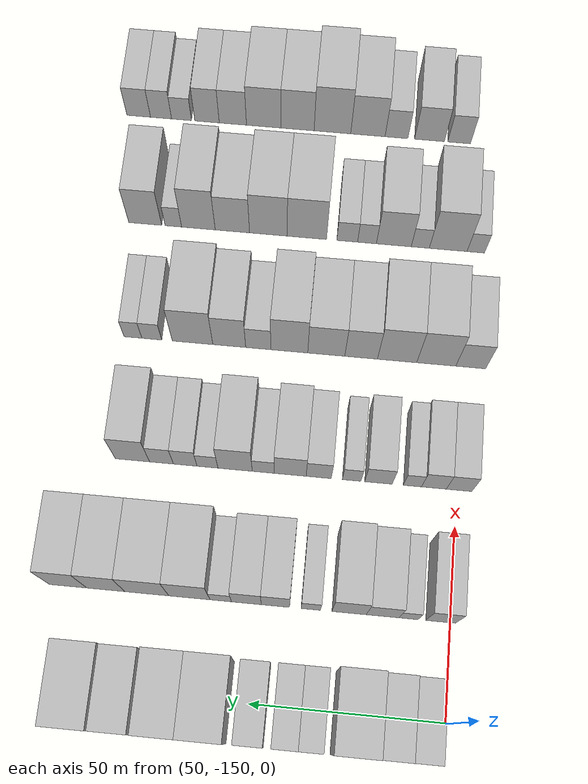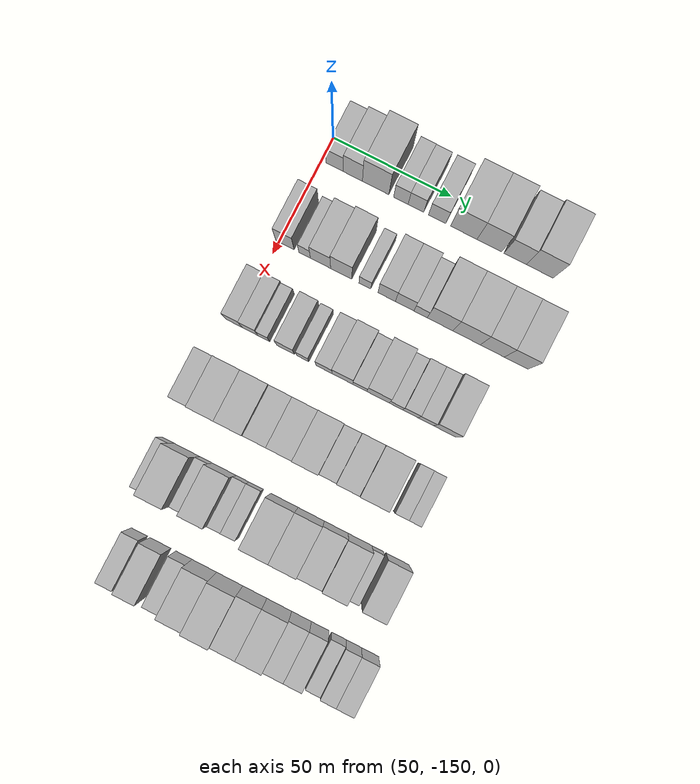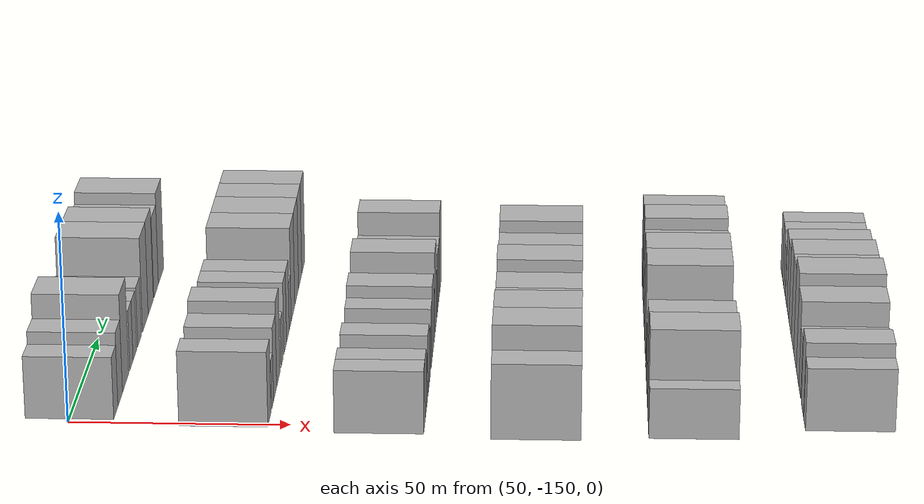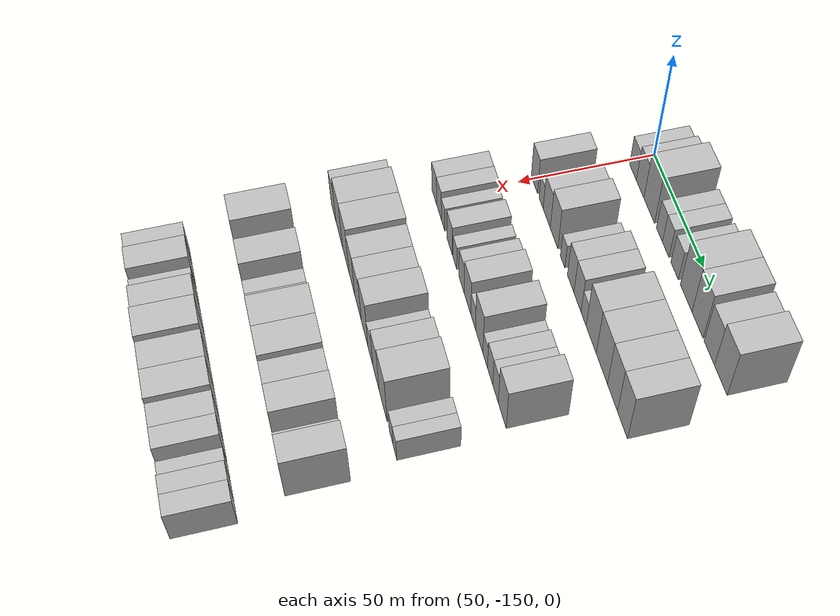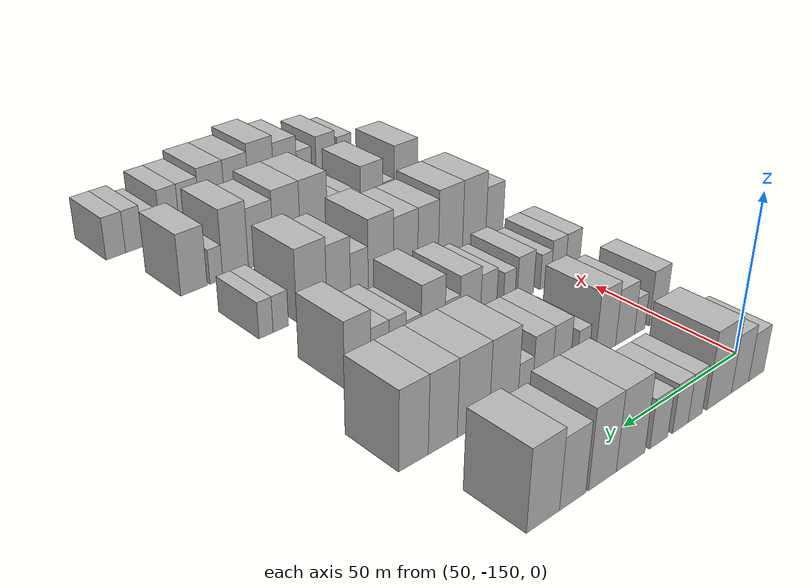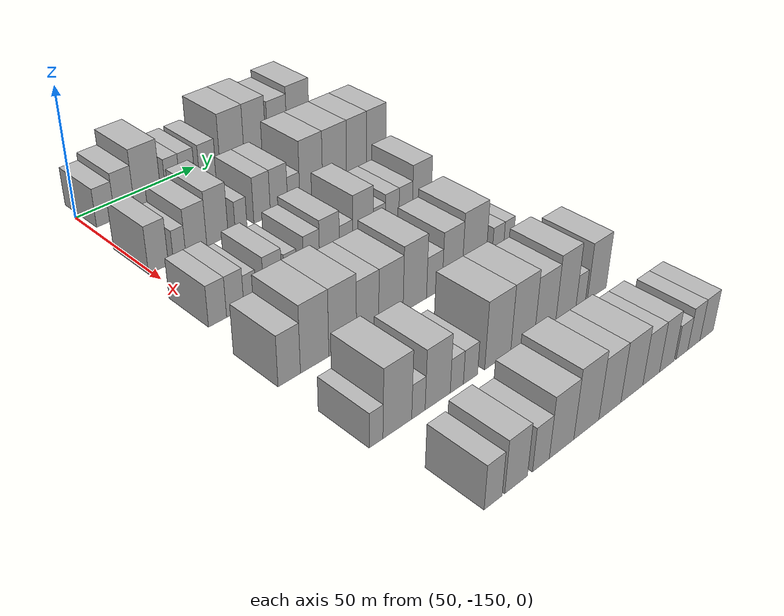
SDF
<sdf version="1.6">
 <world name="default">
  <model name="building_44">
   <static>1</static>
   <pose>50.0000 -144.4932 0 0.000000 0.000000 0.000000</pose>
   <link name="link">
    <pose>0 0 7.50 0 0 0</pose>
    <collision name="collision"><geometry><box><size>20.0000 7.3737 15.0000</size></box></geometry></collision>
    <visual name="visual">
     <cast_shadows>0</cast_shadows>
     <geometry><box><size>20.0000 7.3737 15.0000</size></box></geometry>
     <material>
      <script>
       <uri>model://HANNAS_wall/materials/scripts</uri>
       <uri>model://HANNAS_wall/materials/textures</uri>
       <name>vrc/HANNAS_wall</name>
      </script>
     </material>
    </visual>
   </link>
  </model>
  <model name="building_45">
   <static>1</static>
   <pose>50.0000 -136.7540 0 0.000000 0.000000 0.000000</pose>
   <link name="link">
    <pose>0 0 9.00 0 0 0</pose>
    <collision name="collision"><geometry><box><size>20.0000 8.1047 18.0000</size></box></geometry></collision>
    <visual name="visual">
     <cast_shadows>0</cast_shadows>
     <geometry><box><size>20.0000 8.1047 18.0000</size></box></geometry>
     <material>
      <script>
       <uri>model://HANNAS_wall/materials/scripts</uri>
       <uri>model://HANNAS_wall/materials/textures</uri>
       <name>vrc/HANNAS_wall</name>
      </script>
     </material>
    </visual>
   </link>
  </model>
  <model name="building_46">
   <static>1</static>
   <pose>50.0000 -127.0988 0 0.000000 0.000000 0.000000</pose>
   <link name="link">
    <pose>0 0 12.00 0 0 0</pose>
    <collision name="collision"><geometry><box><size>20.0000 11.2057 24.0000</size></box></geometry></collision>
    <visual name="visual">
     <cast_shadows>0</cast_shadows>
     <geometry><box><size>20.0000 11.2057 24.0000</size></box></geometry>
     <material>
      <script>
       <uri>model://HANNAS_wall/materials/scripts</uri>
       <uri>model://HANNAS_wall/materials/textures</uri>
       <name>vrc/HANNAS_wall</name>
      </script>
     </material>
    </visual>
   </link>
  </model>
  <model name="building_47">
   <static>1</static>
   <pose>50.0000 -116.4129 0 0.000000 0.000000 0.000000</pose>
   <link name="link">
    <pose>0 0 7.50 0 0 0</pose>
    <collision name="collision"><geometry><box><size>20.0000 6.1662 15.0000</size></box></geometry></collision>
    <visual name="visual">
     <cast_shadows>0</cast_shadows>
     <geometry><box><size>20.0000 6.1662 15.0000</size></box></geometry>
     <material>
      <script>
       <uri>model://HANNAS_wall/materials/scripts</uri>
       <uri>model://HANNAS_wall/materials/textures</uri>
       <name>vrc/HANNAS_wall</name>
      </script>
     </material>
    </visual>
   </link>
  </model>
  <model name="building_48">
   <static>1</static>
   <pose>50.0000 -110.0384 0 0.000000 0.000000 0.000000</pose>
   <link name="link">
    <pose>0 0 7.50 0 0 0</pose>
    <collision name="collision"><geometry><box><size>20.0000 6.5830 15.0000</size></box></geometry></collision>
    <visual name="visual">
     <cast_shadows>0</cast_shadows>
     <geometry><box><size>20.0000 6.5830 15.0000</size></box></geometry>
     <material>
      <script>
       <uri>model://HANNAS_wall/materials/scripts</uri>
       <uri>model://HANNAS_wall/materials/textures</uri>
       <name>vrc/HANNAS_wall</name>
      </script>
     </material>
    </visual>
   </link>
  </model>
  <model name="building_49">
   <static>1</static>
   <pose>50.0000 -101.0673 0 0.000000 0.000000 0.000000</pose>
   <link name="link">
    <pose>0 0 7.50 0 0 0</pose>
    <collision name="collision"><geometry><box><size>20.0000 7.3591 15.0000</size></box></geometry></collision>
    <visual name="visual">
     <cast_shadows>0</cast_shadows>
     <geometry><box><size>20.0000 7.3591 15.0000</size></box></geometry>
     <material>
      <script>
       <uri>model://HANNAS_wall/materials/scripts</uri>
       <uri>model://HANNAS_wall/materials/textures</uri>
       <name>vrc/HANNAS_wall</name>
      </script>
     </material>
    </visual>
   </link>
  </model>
  <model name="building_50">
   <static>1</static>
   <pose>50.0000 -89.7854 0 0.000000 0.000000 0.000000</pose>
   <link name="link">
    <pose>0 0 12.00 0 0 0</pose>
    <collision name="collision"><geometry><box><size>20.0000 11.2048 24.0000</size></box></geometry></collision>
    <visual name="visual">
     <cast_shadows>0</cast_shadows>
     <geometry><box><size>20.0000 11.2048 24.0000</size></box></geometry>
     <material>
      <script>
       <uri>model://HANNAS_wall/materials/scripts</uri>
       <uri>model://HANNAS_wall/materials/textures</uri>
       <name>vrc/HANNAS_wall</name>
      </script>
     </material>
    </visual>
   </link>
  </model>
  <model name="building_51">
   <static>1</static>
   <pose>50.0000 -78.9903 0 0.000000 0.000000 0.000000</pose>
   <link name="link">
    <pose>0 0 12.00 0 0 0</pose>
    <collision name="collision"><geometry><box><size>20.0000 10.3854 24.0000</size></box></geometry></collision>
    <visual name="visual">
     <cast_shadows>0</cast_shadows>
     <geometry><box><size>20.0000 10.3854 24.0000</size></box></geometry>
     <material>
      <script>
       <uri>model://HANNAS_wall/materials/scripts</uri>
       <uri>model://HANNAS_wall/materials/textures</uri>
       <name>vrc/HANNAS_wall</name>
      </script>
     </material>
    </visual>
   </link>
  </model>
  <model name="building_52">
   <static>1</static>
   <pose>50.0000 -68.1054 0 0.000000 0.000000 0.000000</pose>
   <link name="link">
    <pose>0 0 10.50 0 0 0</pose>
    <collision name="collision"><geometry><box><size>20.0000 9.3843 21.0000</size></box></geometry></collision>
    <visual name="visual">
     <cast_shadows>0</cast_shadows>
     <geometry><box><size>20.0000 9.3843 21.0000</size></box></geometry>
     <material>
      <script>
       <uri>model://HANNAS_wall/materials/scripts</uri>
       <uri>model://HANNAS_wall/materials/textures</uri>
       <name>vrc/HANNAS_wall</name>
      </script>
     </material>
    </visual>
   </link>
  </model>
  <model name="building_53">
   <static>1</static>
   <pose>50.0000 -57.7702 0 0.000000 0.000000 0.000000</pose>
   <link name="link">
    <pose>0 0 12.00 0 0 0</pose>
    <collision name="collision"><geometry><box><size>20.0000 11.2861 24.0000</size></box></geometry></collision>
    <visual name="visual">
     <cast_shadows>0</cast_shadows>
     <geometry><box><size>20.0000 11.2861 24.0000</size></box></geometry>
     <material>
      <script>
       <uri>model://HANNAS_wall/materials/scripts</uri>
       <uri>model://HANNAS_wall/materials/textures</uri>
       <name>vrc/HANNAS_wall</name>
      </script>
     </material>
    </visual>
   </link>
  </model>
  <model name="building_177">
   <static>1</static>
   <pose>85.0000 -147.4346 0 0.000000 0.000000 0.000000</pose>
   <link name="link">
    <pose>0 0 9.00 0 0 0</pose>
    <collision name="collision"><geometry><box><size>20.0000 7.7125 18.0000</size></box></geometry></collision>
    <visual name="visual">
     <cast_shadows>0</cast_shadows>
     <geometry><box><size>20.0000 7.7125 18.0000</size></box></geometry>
     <material>
      <script>
       <uri>model://HANNAS_wall/materials/scripts</uri>
       <uri>model://HANNAS_wall/materials/textures</uri>
       <name>vrc/HANNAS_wall</name>
      </script>
     </material>
    </visual>
   </link>
  </model>
  <model name="building_178">
   <static>1</static>
   <pose>85.0000 -139.1240 0 0.000000 0.000000 0.000000</pose>
   <link name="link">
    <pose>0 0 6.00 0 0 0</pose>
    <collision name="collision"><geometry><box><size>20.0000 4.9088 12.0000</size></box></geometry></collision>
    <visual name="visual">
     <cast_shadows>0</cast_shadows>
     <geometry><box><size>20.0000 4.9088 12.0000</size></box></geometry>
     <material>
      <script>
       <uri>model://HANNAS_wall/materials/scripts</uri>
       <uri>model://HANNAS_wall/materials/textures</uri>
       <name>vrc/HANNAS_wall</name>
      </script>
     </material>
    </visual>
   </link>
  </model>
  <model name="building_179">
   <static>1</static>
   <pose>85.0000 -132.3957 0 0.000000 0.000000 0.000000</pose>
   <link name="link">
    <pose>0 0 9.00 0 0 0</pose>
    <collision name="collision"><geometry><box><size>20.0000 8.5478 18.0000</size></box></geometry></collision>
    <visual name="visual">
     <cast_shadows>0</cast_shadows>
     <geometry><box><size>20.0000 8.5478 18.0000</size></box></geometry>
     <material>
      <script>
       <uri>model://HANNAS_wall/materials/scripts</uri>
       <uri>model://HANNAS_wall/materials/textures</uri>
       <name>vrc/HANNAS_wall</name>
      </script>
     </material>
    </visual>
   </link>
  </model>
  <model name="building_180">
   <static>1</static>
   <pose>85.0000 -123.6676 0 0.000000 0.000000 0.000000</pose>
   <link name="link">
    <pose>0 0 10.50 0 0 0</pose>
    <collision name="collision"><geometry><box><size>20.0000 8.9084 21.0000</size></box></geometry></collision>
    <visual name="visual">
     <cast_shadows>0</cast_shadows>
     <geometry><box><size>20.0000 8.9084 21.0000</size></box></geometry>
     <material>
      <script>
       <uri>model://HANNAS_wall/materials/scripts</uri>
       <uri>model://HANNAS_wall/materials/textures</uri>
       <name>vrc/HANNAS_wall</name>
      </script>
     </material>
    </visual>
   </link>
  </model>
  <model name="building_181">
   <static>1</static>
   <pose>85.0000 -113.6904 0 0.000000 0.000000 0.000000</pose>
   <link name="link">
    <pose>0 0 6.00 0 0 0</pose>
    <collision name="collision"><geometry><box><size>20.0000 5.0460 12.0000</size></box></geometry></collision>
    <visual name="visual">
     <cast_shadows>0</cast_shadows>
     <geometry><box><size>20.0000 5.0460 12.0000</size></box></geometry>
     <material>
      <script>
       <uri>model://HANNAS_wall/materials/scripts</uri>
       <uri>model://HANNAS_wall/materials/textures</uri>
       <name>vrc/HANNAS_wall</name>
      </script>
     </material>
    </visual>
   </link>
  </model>
  <model name="building_182">
   <static>1</static>
   <pose>85.0000 -104.4990 0 0.000000 0.000000 0.000000</pose>
   <link name="link">
    <pose>0 0 9.00 0 0 0</pose>
    <collision name="collision"><geometry><box><size>20.0000 7.3367 18.0000</size></box></geometry></collision>
    <visual name="visual">
     <cast_shadows>0</cast_shadows>
     <geometry><box><size>20.0000 7.3367 18.0000</size></box></geometry>
     <material>
      <script>
       <uri>model://HANNAS_wall/materials/scripts</uri>
       <uri>model://HANNAS_wall/materials/textures</uri>
       <name>vrc/HANNAS_wall</name>
      </script>
     </material>
    </visual>
   </link>
  </model>
  <model name="building_183">
   <static>1</static>
   <pose>85.0000 -96.9382 0 0.000000 0.000000 0.000000</pose>
   <link name="link">
    <pose>0 0 9.00 0 0 0</pose>
    <collision name="collision"><geometry><box><size>20.0000 7.7849 18.0000</size></box></geometry></collision>
    <visual name="visual">
     <cast_shadows>0</cast_shadows>
     <geometry><box><size>20.0000 7.7849 18.0000</size></box></geometry>
     <material>
      <script>
       <uri>model://HANNAS_wall/materials/scripts</uri>
       <uri>model://HANNAS_wall/materials/textures</uri>
       <name>vrc/HANNAS_wall</name>
      </script>
     </material>
    </visual>
   </link>
  </model>
  <model name="building_184">
   <static>1</static>
   <pose>85.0000 -90.2347 0 0.000000 0.000000 0.000000</pose>
   <link name="link">
    <pose>0 0 6.00 0 0 0</pose>
    <collision name="collision"><geometry><box><size>20.0000 5.6222 12.0000</size></box></geometry></collision>
    <visual name="visual">
     <cast_shadows>0</cast_shadows>
     <geometry><box><size>20.0000 5.6222 12.0000</size></box></geometry>
     <material>
      <script>
       <uri>model://HANNAS_wall/materials/scripts</uri>
       <uri>model://HANNAS_wall/materials/textures</uri>
       <name>vrc/HANNAS_wall</name>
      </script>
     </material>
    </visual>
   </link>
  </model>
  <model name="building_185">
   <static>1</static>
   <pose>85.0000 -82.0452 0 0.000000 0.000000 0.000000</pose>
   <link name="link">
    <pose>0 0 12.00 0 0 0</pose>
    <collision name="collision"><geometry><box><size>20.0000 10.7568 24.0000</size></box></geometry></collision>
    <visual name="visual">
     <cast_shadows>0</cast_shadows>
     <geometry><box><size>20.0000 10.7568 24.0000</size></box></geometry>
     <material>
      <script>
       <uri>model://HANNAS_wall/materials/scripts</uri>
       <uri>model://HANNAS_wall/materials/textures</uri>
       <name>vrc/HANNAS_wall</name>
      </script>
     </material>
    </visual>
   </link>
  </model>
  <model name="building_186">
   <static>1</static>
   <pose>85.0000 -70.8764 0 0.000000 0.000000 0.000000</pose>
   <link name="link">
    <pose>0 0 12.00 0 0 0</pose>
    <collision name="collision"><geometry><box><size>20.0000 11.5807 24.0000</size></box></geometry></collision>
    <visual name="visual">
     <cast_shadows>0</cast_shadows>
     <geometry><box><size>20.0000 11.5807 24.0000</size></box></geometry>
     <material>
      <script>
       <uri>model://HANNAS_wall/materials/scripts</uri>
       <uri>model://HANNAS_wall/materials/textures</uri>
       <name>vrc/HANNAS_wall</name>
      </script>
     </material>
    </visual>
   </link>
  </model>
  <model name="building_187">
   <static>1</static>
   <pose>85.0000 -60.0689 0 0.000000 0.000000 0.000000</pose>
   <link name="link">
    <pose>0 0 12.00 0 0 0</pose>
    <collision name="collision"><geometry><box><size>20.0000 10.0343 24.0000</size></box></geometry></collision>
    <visual name="visual">
     <cast_shadows>0</cast_shadows>
     <geometry><box><size>20.0000 10.0343 24.0000</size></box></geometry>
     <material>
      <script>
       <uri>model://HANNAS_wall/materials/scripts</uri>
       <uri>model://HANNAS_wall/materials/textures</uri>
       <name>vrc/HANNAS_wall</name>
      </script>
     </material>
    </visual>
   </link>
  </model>
  <model name="building_188">
   <static>1</static>
   <pose>85.0000 -50.1164 0 0.000000 0.000000 0.000000</pose>
   <link name="link">
    <pose>0 0 12.00 0 0 0</pose>
    <collision name="collision"><geometry><box><size>20.0000 9.8706 24.0000</size></box></geometry></collision>
    <visual name="visual">
     <cast_shadows>0</cast_shadows>
     <geometry><box><size>20.0000 9.8706 24.0000</size></box></geometry>
     <material>
      <script>
       <uri>model://HANNAS_wall/materials/scripts</uri>
       <uri>model://HANNAS_wall/materials/textures</uri>
       <name>vrc/HANNAS_wall</name>
      </script>
     </material>
    </visual>
   </link>
  </model>
  <model name="building_302">
   <static>1</static>
   <pose>120.0000 -150.6506 0 0.000000 0.000000 0.000000</pose>
   <link name="link">
    <pose>0 0 7.50 0 0 0</pose>
    <collision name="collision"><geometry><box><size>20.0000 6.8512 15.0000</size></box></geometry></collision>
    <visual name="visual">
     <cast_shadows>0</cast_shadows>
     <geometry><box><size>20.0000 6.8512 15.0000</size></box></geometry>
     <material>
      <script>
       <uri>model://HANNAS_wall/materials/scripts</uri>
       <uri>model://HANNAS_wall/materials/textures</uri>
       <name>vrc/HANNAS_wall</name>
      </script>
     </material>
    </visual>
   </link>
  </model>
  <model name="building_303">
   <static>1</static>
   <pose>120.0000 -143.8847 0 0.000000 0.000000 0.000000</pose>
   <link name="link">
    <pose>0 0 7.50 0 0 0</pose>
    <collision name="collision"><geometry><box><size>20.0000 6.6807 15.0000</size></box></geometry></collision>
    <visual name="visual">
     <cast_shadows>0</cast_shadows>
     <geometry><box><size>20.0000 6.6807 15.0000</size></box></geometry>
     <material>
      <script>
       <uri>model://HANNAS_wall/materials/scripts</uri>
       <uri>model://HANNAS_wall/materials/textures</uri>
       <name>vrc/HANNAS_wall</name>
      </script>
     </material>
    </visual>
   </link>
  </model>
  <model name="building_304">
   <static>1</static>
   <pose>120.0000 -138.1042 0 0.000000 0.000000 0.000000</pose>
   <link name="link">
    <pose>0 0 6.00 0 0 0</pose>
    <collision name="collision"><geometry><box><size>20.0000 4.8803 12.0000</size></box></geometry></collision>
    <visual name="visual">
     <cast_shadows>0</cast_shadows>
     <geometry><box><size>20.0000 4.8803 12.0000</size></box></geometry>
     <material>
      <script>
       <uri>model://HANNAS_wall/materials/scripts</uri>
       <uri>model://HANNAS_wall/materials/textures</uri>
       <name>vrc/HANNAS_wall</name>
      </script>
     </material>
    </visual>
   </link>
  </model>
  <model name="building_305">
   <static>1</static>
   <pose>120.0000 -128.9556 0 0.000000 0.000000 0.000000</pose>
   <link name="link">
    <pose>0 0 7.50 0 0 0</pose>
    <collision name="collision"><geometry><box><size>20.0000 7.4170 15.0000</size></box></geometry></collision>
    <visual name="visual">
     <cast_shadows>0</cast_shadows>
     <geometry><box><size>20.0000 7.4170 15.0000</size></box></geometry>
     <material>
      <script>
       <uri>model://HANNAS_wall/materials/scripts</uri>
       <uri>model://HANNAS_wall/materials/textures</uri>
       <name>vrc/HANNAS_wall</name>
      </script>
     </material>
    </visual>
   </link>
  </model>
  <model name="building_306">
   <static>1</static>
   <pose>120.0000 -121.7384 0 0.000000 0.000000 0.000000</pose>
   <link name="link">
    <pose>0 0 6.00 0 0 0</pose>
    <collision name="collision"><geometry><box><size>20.0000 5.0174 12.0000</size></box></geometry></collision>
    <visual name="visual">
     <cast_shadows>0</cast_shadows>
     <geometry><box><size>20.0000 5.0174 12.0000</size></box></geometry>
     <material>
      <script>
       <uri>model://HANNAS_wall/materials/scripts</uri>
       <uri>model://HANNAS_wall/materials/textures</uri>
       <name>vrc/HANNAS_wall</name>
      </script>
     </material>
    </visual>
   </link>
  </model>
  <model name="building_307">
   <static>1</static>
   <pose>120.0000 -112.8404 0 0.000000 0.000000 0.000000</pose>
   <link name="link">
    <pose>0 0 7.50 0 0 0</pose>
    <collision name="collision"><geometry><box><size>20.0000 6.7786 15.0000</size></box></geometry></collision>
    <visual name="visual">
     <cast_shadows>0</cast_shadows>
     <geometry><box><size>20.0000 6.7786 15.0000</size></box></geometry>
     <material>
      <script>
       <uri>model://HANNAS_wall/materials/scripts</uri>
       <uri>model://HANNAS_wall/materials/textures</uri>
       <name>vrc/HANNAS_wall</name>
      </script>
     </material>
    </visual>
   </link>
  </model>
  <model name="building_308">
   <static>1</static>
   <pose>120.0000 -105.1440 0 0.000000 0.000000 0.000000</pose>
   <link name="link">
    <pose>0 0 9.00 0 0 0</pose>
    <collision name="collision"><geometry><box><size>20.0000 8.6141 18.0000</size></box></geometry></collision>
    <visual name="visual">
     <cast_shadows>0</cast_shadows>
     <geometry><box><size>20.0000 8.6141 18.0000</size></box></geometry>
     <material>
      <script>
       <uri>model://HANNAS_wall/materials/scripts</uri>
       <uri>model://HANNAS_wall/materials/textures</uri>
       <name>vrc/HANNAS_wall</name>
      </script>
     </material>
    </visual>
   </link>
  </model>
  <model name="building_309">
   <static>1</static>
   <pose>120.0000 -97.8577 0 0.000000 0.000000 0.000000</pose>
   <link name="link">
    <pose>0 0 6.00 0 0 0</pose>
    <collision name="collision"><geometry><box><size>20.0000 5.9584 12.0000</size></box></geometry></collision>
    <visual name="visual">
     <cast_shadows>0</cast_shadows>
     <geometry><box><size>20.0000 5.9584 12.0000</size></box></geometry>
     <material>
      <script>
       <uri>model://HANNAS_wall/materials/scripts</uri>
       <uri>model://HANNAS_wall/materials/textures</uri>
       <name>vrc/HANNAS_wall</name>
      </script>
     </material>
    </visual>
   </link>
  </model>
  <model name="building_310">
   <static>1</static>
   <pose>120.0000 -90.2235 0 0.000000 0.000000 0.000000</pose>
   <link name="link">
    <pose>0 0 10.50 0 0 0</pose>
    <collision name="collision"><geometry><box><size>20.0000 9.3101 21.0000</size></box></geometry></collision>
    <visual name="visual">
     <cast_shadows>0</cast_shadows>
     <geometry><box><size>20.0000 9.3101 21.0000</size></box></geometry>
     <material>
      <script>
       <uri>model://HANNAS_wall/materials/scripts</uri>
       <uri>model://HANNAS_wall/materials/textures</uri>
       <name>vrc/HANNAS_wall</name>
      </script>
     </material>
    </visual>
   </link>
  </model>
  <model name="building_311">
   <static>1</static>
   <pose>120.0000 -82.7351 0 0.000000 0.000000 0.000000</pose>
   <link name="link">
    <pose>0 0 6.00 0 0 0</pose>
    <collision name="collision"><geometry><box><size>20.0000 5.6667 12.0000</size></box></geometry></collision>
    <visual name="visual">
     <cast_shadows>0</cast_shadows>
     <geometry><box><size>20.0000 5.6667 12.0000</size></box></geometry>
     <material>
      <script>
       <uri>model://HANNAS_wall/materials/scripts</uri>
       <uri>model://HANNAS_wall/materials/textures</uri>
       <name>vrc/HANNAS_wall</name>
      </script>
     </material>
    </visual>
   </link>
  </model>
  <model name="building_312">
   <static>1</static>
   <pose>120.0000 -76.6912 0 0.000000 0.000000 0.000000</pose>
   <link name="link">
    <pose>0 0 7.50 0 0 0</pose>
    <collision name="collision"><geometry><box><size>20.0000 6.4211 15.0000</size></box></geometry></collision>
    <visual name="visual">
     <cast_shadows>0</cast_shadows>
     <geometry><box><size>20.0000 6.4211 15.0000</size></box></geometry>
     <material>
      <script>
       <uri>model://HANNAS_wall/materials/scripts</uri>
       <uri>model://HANNAS_wall/materials/textures</uri>
       <name>vrc/HANNAS_wall</name>
      </script>
     </material>
    </visual>
   </link>
  </model>
  <model name="building_313">
   <static>1</static>
   <pose>120.0000 -70.2396 0 0.000000 0.000000 0.000000</pose>
   <link name="link">
    <pose>0 0 7.50 0 0 0</pose>
    <collision name="collision"><geometry><box><size>20.0000 6.4821 15.0000</size></box></geometry></collision>
    <visual name="visual">
     <cast_shadows>0</cast_shadows>
     <geometry><box><size>20.0000 6.4821 15.0000</size></box></geometry>
     <material>
      <script>
       <uri>model://HANNAS_wall/materials/scripts</uri>
       <uri>model://HANNAS_wall/materials/textures</uri>
       <name>vrc/HANNAS_wall</name>
      </script>
     </material>
    </visual>
   </link>
  </model>
  <model name="building_314">
   <static>1</static>
   <pose>120.0000 -62.3307 0 0.000000 0.000000 0.000000</pose>
   <link name="link">
    <pose>0 0 10.50 0 0 0</pose>
    <collision name="collision"><geometry><box><size>20.0000 9.3358 21.0000</size></box></geometry></collision>
    <visual name="visual">
     <cast_shadows>0</cast_shadows>
     <geometry><box><size>20.0000 9.3358 21.0000</size></box></geometry>
     <material>
      <script>
       <uri>model://HANNAS_wall/materials/scripts</uri>
       <uri>model://HANNAS_wall/materials/textures</uri>
       <name>vrc/HANNAS_wall</name>
      </script>
     </material>
    </visual>
   </link>
  </model>
  <model name="building_429">
   <static>1</static>
   <pose>155.0000 -152.3102 0 0.000000 0.000000 0.000000</pose>
   <link name="link">
    <pose>0 0 9.00 0 0 0</pose>
    <collision name="collision"><geometry><box><size>20.0000 8.3105 18.0000</size></box></geometry></collision>
    <visual name="visual">
     <cast_shadows>0</cast_shadows>
     <geometry><box><size>20.0000 8.3105 18.0000</size></box></geometry>
     <material>
      <script>
       <uri>model://HANNAS_wall/materials/scripts</uri>
       <uri>model://HANNAS_wall/materials/textures</uri>
       <name>vrc/HANNAS_wall</name>
      </script>
     </material>
    </visual>
   </link>
  </model>
  <model name="building_430">
   <static>1</static>
   <pose>155.0000 -142.7226 0 0.000000 0.000000 0.000000</pose>
   <link name="link">
    <pose>0 0 12.00 0 0 0</pose>
    <collision name="collision"><geometry><box><size>20.0000 10.8646 24.0000</size></box></geometry></collision>
    <visual name="visual">
     <cast_shadows>0</cast_shadows>
     <geometry><box><size>20.0000 10.8646 24.0000</size></box></geometry>
     <material>
      <script>
       <uri>model://HANNAS_wall/materials/scripts</uri>
       <uri>model://HANNAS_wall/materials/textures</uri>
       <name>vrc/HANNAS_wall</name>
      </script>
     </material>
    </visual>
   </link>
  </model>
  <model name="building_431">
   <static>1</static>
   <pose>155.0000 -131.8116 0 0.000000 0.000000 0.000000</pose>
   <link name="link">
    <pose>0 0 12.00 0 0 0</pose>
    <collision name="collision"><geometry><box><size>20.0000 10.9573 24.0000</size></box></geometry></collision>
    <visual name="visual">
     <cast_shadows>0</cast_shadows>
     <geometry><box><size>20.0000 10.9573 24.0000</size></box></geometry>
     <material>
      <script>
       <uri>model://HANNAS_wall/materials/scripts</uri>
       <uri>model://HANNAS_wall/materials/textures</uri>
       <name>vrc/HANNAS_wall</name>
      </script>
     </material>
    </visual>
   </link>
  </model>
  <model name="building_432">
   <static>1</static>
   <pose>155.0000 -121.7716 0 0.000000 0.000000 0.000000</pose>
   <link name="link">
    <pose>0 0 10.50 0 0 0</pose>
    <collision name="collision"><geometry><box><size>20.0000 9.1228 21.0000</size></box></geometry></collision>
    <visual name="visual">
     <cast_shadows>0</cast_shadows>
     <geometry><box><size>20.0000 9.1228 21.0000</size></box></geometry>
     <material>
      <script>
       <uri>model://HANNAS_wall/materials/scripts</uri>
       <uri>model://HANNAS_wall/materials/textures</uri>
       <name>vrc/HANNAS_wall</name>
      </script>
     </material>
    </visual>
   </link>
  </model>
  <model name="building_433">
   <static>1</static>
   <pose>155.0000 -112.0318 0 0.000000 0.000000 0.000000</pose>
   <link name="link">
    <pose>0 0 10.50 0 0 0</pose>
    <collision name="collision"><geometry><box><size>20.0000 10.3567 21.0000</size></box></geometry></collision>
    <visual name="visual">
     <cast_shadows>0</cast_shadows>
     <geometry><box><size>20.0000 10.3567 21.0000</size></box></geometry>
     <material>
      <script>
       <uri>model://HANNAS_wall/materials/scripts</uri>
       <uri>model://HANNAS_wall/materials/textures</uri>
       <name>vrc/HANNAS_wall</name>
      </script>
     </material>
    </visual>
   </link>
  </model>
  <model name="building_434">
   <static>1</static>
   <pose>155.0000 -101.6927 0 0.000000 0.000000 0.000000</pose>
   <link name="link">
    <pose>0 0 12.00 0 0 0</pose>
    <collision name="collision"><geometry><box><size>20.0000 10.3215 24.0000</size></box></geometry></collision>
    <visual name="visual">
     <cast_shadows>0</cast_shadows>
     <geometry><box><size>20.0000 10.3215 24.0000</size></box></geometry>
     <material>
      <script>
       <uri>model://HANNAS_wall/materials/scripts</uri>
       <uri>model://HANNAS_wall/materials/textures</uri>
       <name>vrc/HANNAS_wall</name>
      </script>
     </material>
    </visual>
   </link>
  </model>
  <model name="building_435">
   <static>1</static>
   <pose>155.0000 -93.0029 0 0.000000 0.000000 0.000000</pose>
   <link name="link">
    <pose>0 0 7.50 0 0 0</pose>
    <collision name="collision"><geometry><box><size>20.0000 7.0582 15.0000</size></box></geometry></collision>
    <visual name="visual">
     <cast_shadows>0</cast_shadows>
     <geometry><box><size>20.0000 7.0582 15.0000</size></box></geometry>
     <material>
      <script>
       <uri>model://HANNAS_wall/materials/scripts</uri>
       <uri>model://HANNAS_wall/materials/textures</uri>
       <name>vrc/HANNAS_wall</name>
      </script>
     </material>
    </visual>
   </link>
  </model>
  <model name="building_436">
   <static>1</static>
   <pose>155.0000 -84.8559 0 0.000000 0.000000 0.000000</pose>
   <link name="link">
    <pose>0 0 10.50 0 0 0</pose>
    <collision name="collision"><geometry><box><size>20.0000 9.2358 21.0000</size></box></geometry></collision>
    <visual name="visual">
     <cast_shadows>0</cast_shadows>
     <geometry><box><size>20.0000 9.2358 21.0000</size></box></geometry>
     <material>
      <script>
       <uri>model://HANNAS_wall/materials/scripts</uri>
       <uri>model://HANNAS_wall/materials/textures</uri>
       <name>vrc/HANNAS_wall</name>
      </script>
     </material>
    </visual>
   </link>
  </model>
  <model name="building_437">
   <static>1</static>
   <pose>155.0000 -74.5309 0 0.000000 0.000000 0.000000</pose>
   <link name="link">
    <pose>0 0 12.00 0 0 0</pose>
    <collision name="collision"><geometry><box><size>20.0000 11.4142 24.0000</size></box></geometry></collision>
    <visual name="visual">
     <cast_shadows>0</cast_shadows>
     <geometry><box><size>20.0000 11.4142 24.0000</size></box></geometry>
     <material>
      <script>
       <uri>model://HANNAS_wall/materials/scripts</uri>
       <uri>model://HANNAS_wall/materials/textures</uri>
       <name>vrc/HANNAS_wall</name>
      </script>
     </material>
    </visual>
   </link>
  </model>
  <model name="building_438">
   <static>1</static>
   <pose>155.0000 -63.0282 0 0.000000 0.000000 0.000000</pose>
   <link name="link">
    <pose>0 0 6.00 0 0 0</pose>
    <collision name="collision"><geometry><box><size>20.0000 5.5913 12.0000</size></box></geometry></collision>
    <visual name="visual">
     <cast_shadows>0</cast_shadows>
     <geometry><box><size>20.0000 5.5913 12.0000</size></box></geometry>
     <material>
      <script>
       <uri>model://HANNAS_wall/materials/scripts</uri>
       <uri>model://HANNAS_wall/materials/textures</uri>
       <name>vrc/HANNAS_wall</name>
      </script>
     </material>
    </visual>
   </link>
  </model>
  <model name="building_439">
   <static>1</static>
   <pose>155.0000 -57.7236 0 0.000000 0.000000 0.000000</pose>
   <link name="link">
    <pose>0 0 6.00 0 0 0</pose>
    <collision name="collision"><geometry><box><size>20.0000 5.0177 12.0000</size></box></geometry></collision>
    <visual name="visual">
     <cast_shadows>0</cast_shadows>
     <geometry><box><size>20.0000 5.0177 12.0000</size></box></geometry>
     <material>
      <script>
       <uri>model://HANNAS_wall/materials/scripts</uri>
       <uri>model://HANNAS_wall/materials/textures</uri>
       <name>vrc/HANNAS_wall</name>
      </script>
     </material>
    </visual>
   </link>
  </model>
  <model name="building_558">
   <static>1</static>
   <pose>190.0000 -152.3273 0 0.000000 0.000000 0.000000</pose>
   <link name="link">
    <pose>0 0 6.00 0 0 0</pose>
    <collision name="collision"><geometry><box><size>20.0000 5.0221 12.0000</size></box></geometry></collision>
    <visual name="visual">
     <cast_shadows>0</cast_shadows>
     <geometry><box><size>20.0000 5.0221 12.0000</size></box></geometry>
     <material>
      <script>
       <uri>model://HANNAS_wall/materials/scripts</uri>
       <uri>model://HANNAS_wall/materials/textures</uri>
       <name>vrc/HANNAS_wall</name>
      </script>
     </material>
    </visual>
   </link>
  </model>
  <model name="building_559">
   <static>1</static>
   <pose>190.0000 -144.3836 0 0.000000 0.000000 0.000000</pose>
   <link name="link">
    <pose>0 0 12.00 0 0 0</pose>
    <collision name="collision"><geometry><box><size>20.0000 10.8654 24.0000</size></box></geometry></collision>
    <visual name="visual">
     <cast_shadows>0</cast_shadows>
     <geometry><box><size>20.0000 10.8654 24.0000</size></box></geometry>
     <material>
      <script>
       <uri>model://HANNAS_wall/materials/scripts</uri>
       <uri>model://HANNAS_wall/materials/textures</uri>
       <name>vrc/HANNAS_wall</name>
      </script>
     </material>
    </visual>
   </link>
  </model>
  <model name="building_560">
   <static>1</static>
   <pose>190.0000 -136.3457 0 0.000000 0.000000 0.000000</pose>
   <link name="link">
    <pose>0 0 6.00 0 0 0</pose>
    <collision name="collision"><geometry><box><size>20.0000 5.2103 12.0000</size></box></geometry></collision>
    <visual name="visual">
     <cast_shadows>0</cast_shadows>
     <geometry><box><size>20.0000 5.2103 12.0000</size></box></geometry>
     <material>
      <script>
       <uri>model://HANNAS_wall/materials/scripts</uri>
       <uri>model://HANNAS_wall/materials/textures</uri>
       <name>vrc/HANNAS_wall</name>
      </script>
     </material>
    </visual>
   </link>
  </model>
  <model name="building_561">
   <static>1</static>
   <pose>190.0000 -128.7146 0 0.000000 0.000000 0.000000</pose>
   <link name="link">
    <pose>0 0 10.50 0 0 0</pose>
    <collision name="collision"><geometry><box><size>20.0000 10.0519 21.0000</size></box></geometry></collision>
    <visual name="visual">
     <cast_shadows>0</cast_shadows>
     <geometry><box><size>20.0000 10.0519 21.0000</size></box></geometry>
     <material>
      <script>
       <uri>model://HANNAS_wall/materials/scripts</uri>
       <uri>model://HANNAS_wall/materials/textures</uri>
       <name>vrc/HANNAS_wall</name>
      </script>
     </material>
    </visual>
   </link>
  </model>
  <model name="building_562">
   <static>1</static>
   <pose>190.0000 -120.9734 0 0.000000 0.000000 0.000000</pose>
   <link name="link">
    <pose>0 0 6.00 0 0 0</pose>
    <collision name="collision"><geometry><box><size>20.0000 5.4306 12.0000</size></box></geometry></collision>
    <visual name="visual">
     <cast_shadows>0</cast_shadows>
     <geometry><box><size>20.0000 5.4306 12.0000</size></box></geometry>
     <material>
      <script>
       <uri>model://HANNAS_wall/materials/scripts</uri>
       <uri>model://HANNAS_wall/materials/textures</uri>
       <name>vrc/HANNAS_wall</name>
      </script>
     </material>
    </visual>
   </link>
  </model>
  <model name="building_563">
   <static>1</static>
   <pose>190.0000 -115.2587 0 0.000000 0.000000 0.000000</pose>
   <link name="link">
    <pose>0 0 6.00 0 0 0</pose>
    <collision name="collision"><geometry><box><size>20.0000 5.9988 12.0000</size></box></geometry></collision>
    <visual name="visual">
     <cast_shadows>0</cast_shadows>
     <geometry><box><size>20.0000 5.9988 12.0000</size></box></geometry>
     <material>
      <script>
       <uri>model://HANNAS_wall/materials/scripts</uri>
       <uri>model://HANNAS_wall/materials/textures</uri>
       <name>vrc/HANNAS_wall</name>
      </script>
     </material>
    </visual>
   </link>
  </model>
  <model name="building_564">
   <static>1</static>
   <pose>190.0000 -103.5517 0 0.000000 0.000000 0.000000</pose>
   <link name="link">
    <pose>0 0 12.00 0 0 0</pose>
    <collision name="collision"><geometry><box><size>20.0000 11.4153 24.0000</size></box></geometry></collision>
    <visual name="visual">
     <cast_shadows>0</cast_shadows>
     <geometry><box><size>20.0000 11.4153 24.0000</size></box></geometry>
     <material>
      <script>
       <uri>model://HANNAS_wall/materials/scripts</uri>
       <uri>model://HANNAS_wall/materials/textures</uri>
       <name>vrc/HANNAS_wall</name>
      </script>
     </material>
    </visual>
   </link>
  </model>
  <model name="building_565">
   <static>1</static>
   <pose>190.0000 -92.3986 0 0.000000 0.000000 0.000000</pose>
   <link name="link">
    <pose>0 0 12.00 0 0 0</pose>
    <collision name="collision"><geometry><box><size>20.0000 10.8908 24.0000</size></box></geometry></collision>
    <visual name="visual">
     <cast_shadows>0</cast_shadows>
     <geometry><box><size>20.0000 10.8908 24.0000</size></box></geometry>
     <material>
      <script>
       <uri>model://HANNAS_wall/materials/scripts</uri>
       <uri>model://HANNAS_wall/materials/textures</uri>
       <name>vrc/HANNAS_wall</name>
      </script>
     </material>
    </visual>
   </link>
  </model>
  <model name="building_566">
   <static>1</static>
   <pose>190.0000 -81.9670 0 0.000000 0.000000 0.000000</pose>
   <link name="link">
    <pose>0 0 10.50 0 0 0</pose>
    <collision name="collision"><geometry><box><size>20.0000 9.9724 21.0000</size></box></geometry></collision>
    <visual name="visual">
     <cast_shadows>0</cast_shadows>
     <geometry><box><size>20.0000 9.9724 21.0000</size></box></geometry>
     <material>
      <script>
       <uri>model://HANNAS_wall/materials/scripts</uri>
       <uri>model://HANNAS_wall/materials/textures</uri>
       <name>vrc/HANNAS_wall</name>
      </script>
     </material>
    </visual>
   </link>
  </model>
  <model name="building_567">
   <static>1</static>
   <pose>190.0000 -72.0741 0 0.000000 0.000000 0.000000</pose>
   <link name="link">
    <pose>0 0 12.00 0 0 0</pose>
    <collision name="collision"><geometry><box><size>20.0000 9.8134 24.0000</size></box></geometry></collision>
    <visual name="visual">
     <cast_shadows>0</cast_shadows>
     <geometry><box><size>20.0000 9.8134 24.0000</size></box></geometry>
     <material>
      <script>
       <uri>model://HANNAS_wall/materials/scripts</uri>
       <uri>model://HANNAS_wall/materials/textures</uri>
       <name>vrc/HANNAS_wall</name>
      </script>
     </material>
    </visual>
   </link>
  </model>
  <model name="building_568">
   <static>1</static>
   <pose>190.0000 -64.7657 0 0.000000 0.000000 0.000000</pose>
   <link name="link">
    <pose>0 0 6.00 0 0 0</pose>
    <collision name="collision"><geometry><box><size>20.0000 4.8033 12.0000</size></box></geometry></collision>
    <visual name="visual">
     <cast_shadows>0</cast_shadows>
     <geometry><box><size>20.0000 4.8033 12.0000</size></box></geometry>
     <material>
      <script>
       <uri>model://HANNAS_wall/materials/scripts</uri>
       <uri>model://HANNAS_wall/materials/textures</uri>
       <name>vrc/HANNAS_wall</name>
      </script>
     </material>
    </visual>
   </link>
  </model>
  <model name="building_569">
   <static>1</static>
   <pose>190.0000 -56.5592 0 0.000000 0.000000 0.000000</pose>
   <link name="link">
    <pose>0 0 10.50 0 0 0</pose>
    <collision name="collision"><geometry><box><size>20.0000 9.6097 21.0000</size></box></geometry></collision>
    <visual name="visual">
     <cast_shadows>0</cast_shadows>
     <geometry><box><size>20.0000 9.6097 21.0000</size></box></geometry>
     <material>
      <script>
       <uri>model://HANNAS_wall/materials/scripts</uri>
       <uri>model://HANNAS_wall/materials/textures</uri>
       <name>vrc/HANNAS_wall</name>
      </script>
     </material>
    </visual>
   </link>
  </model>
  <model name="building_681">
   <static>1</static>
   <pose>225.0000 -145.9785 0 0.000000 0.000000 0.000000</pose>
   <link name="link">
    <pose>0 0 7.50 0 0 0</pose>
    <collision name="collision"><geometry><box><size>20.0000 6.7602 15.0000</size></box></geometry></collision>
    <visual name="visual">
     <cast_shadows>0</cast_shadows>
     <geometry><box><size>20.0000 6.7602 15.0000</size></box></geometry>
     <material>
      <script>
       <uri>model://HANNAS_wall/materials/scripts</uri>
       <uri>model://HANNAS_wall/materials/textures</uri>
       <name>vrc/HANNAS_wall</name>
      </script>
     </material>
    </visual>
   </link>
  </model>
  <model name="building_682">
   <static>1</static>
   <pose>225.0000 -137.1603 0 0.000000 0.000000 0.000000</pose>
   <link name="link">
    <pose>0 0 9.00 0 0 0</pose>
    <collision name="collision"><geometry><box><size>20.0000 8.8761 18.0000</size></box></geometry></collision>
    <visual name="visual">
     <cast_shadows>0</cast_shadows>
     <geometry><box><size>20.0000 8.8761 18.0000</size></box></geometry>
     <material>
      <script>
       <uri>model://HANNAS_wall/materials/scripts</uri>
       <uri>model://HANNAS_wall/materials/textures</uri>
       <name>vrc/HANNAS_wall</name>
      </script>
     </material>
    </visual>
   </link>
  </model>
  <model name="building_683">
   <static>1</static>
   <pose>225.0000 -127.3223 0 0.000000 0.000000 0.000000</pose>
   <link name="link">
    <pose>0 0 7.50 0 0 0</pose>
    <collision name="collision"><geometry><box><size>20.0000 6.7998 15.0000</size></box></geometry></collision>
    <visual name="visual">
     <cast_shadows>0</cast_shadows>
     <geometry><box><size>20.0000 6.7998 15.0000</size></box></geometry>
     <material>
      <script>
       <uri>model://HANNAS_wall/materials/scripts</uri>
       <uri>model://HANNAS_wall/materials/textures</uri>
       <name>vrc/HANNAS_wall</name>
      </script>
     </material>
    </visual>
   </link>
  </model>
  <model name="building_684">
   <static>1</static>
   <pose>225.0000 -118.7936 0 0.000000 0.000000 0.000000</pose>
   <link name="link">
    <pose>0 0 10.50 0 0 0</pose>
    <collision name="collision"><geometry><box><size>20.0000 10.2577 21.0000</size></box></geometry></collision>
    <visual name="visual">
     <cast_shadows>0</cast_shadows>
     <geometry><box><size>20.0000 10.2577 21.0000</size></box></geometry>
     <material>
      <script>
       <uri>model://HANNAS_wall/materials/scripts</uri>
       <uri>model://HANNAS_wall/materials/textures</uri>
       <name>vrc/HANNAS_wall</name>
      </script>
     </material>
    </visual>
   </link>
  </model>
  <model name="building_685">
   <static>1</static>
   <pose>225.0000 -108.1926 0 0.000000 0.000000 0.000000</pose>
   <link name="link">
    <pose>0 0 12.00 0 0 0</pose>
    <collision name="collision"><geometry><box><size>20.0000 10.9442 24.0000</size></box></geometry></collision>
    <visual name="visual">
     <cast_shadows>0</cast_shadows>
     <geometry><box><size>20.0000 10.9442 24.0000</size></box></geometry>
     <material>
      <script>
       <uri>model://HANNAS_wall/materials/scripts</uri>
       <uri>model://HANNAS_wall/materials/textures</uri>
       <name>vrc/HANNAS_wall</name>
      </script>
     </material>
    </visual>
   </link>
  </model>
  <model name="building_686">
   <static>1</static>
   <pose>225.0000 -97.7353 0 0.000000 0.000000 0.000000</pose>
   <link name="link">
    <pose>0 0 10.50 0 0 0</pose>
    <collision name="collision"><geometry><box><size>20.0000 9.9704 21.0000</size></box></geometry></collision>
    <visual name="visual">
     <cast_shadows>0</cast_shadows>
     <geometry><box><size>20.0000 9.9704 21.0000</size></box></geometry>
     <material>
      <script>
       <uri>model://HANNAS_wall/materials/scripts</uri>
       <uri>model://HANNAS_wall/materials/textures</uri>
       <name>vrc/HANNAS_wall</name>
      </script>
     </material>
    </visual>
   </link>
  </model>
  <model name="building_687">
   <static>1</static>
   <pose>225.0000 -87.5889 0 0.000000 0.000000 0.000000</pose>
   <link name="link">
    <pose>0 0 10.50 0 0 0</pose>
    <collision name="collision"><geometry><box><size>20.0000 10.3224 21.0000</size></box></geometry></collision>
    <visual name="visual">
     <cast_shadows>0</cast_shadows>
     <geometry><box><size>20.0000 10.3224 21.0000</size></box></geometry>
     <material>
      <script>
       <uri>model://HANNAS_wall/materials/scripts</uri>
       <uri>model://HANNAS_wall/materials/textures</uri>
       <name>vrc/HANNAS_wall</name>
      </script>
     </material>
    </visual>
   </link>
  </model>
  <model name="building_688">
   <static>1</static>
   <pose>225.0000 -78.3358 0 0.000000 0.000000 0.000000</pose>
   <link name="link">
    <pose>0 0 9.00 0 0 0</pose>
    <collision name="collision"><geometry><box><size>20.0000 8.1836 18.0000</size></box></geometry></collision>
    <visual name="visual">
     <cast_shadows>0</cast_shadows>
     <geometry><box><size>20.0000 8.1836 18.0000</size></box></geometry>
     <material>
      <script>
       <uri>model://HANNAS_wall/materials/scripts</uri>
       <uri>model://HANNAS_wall/materials/textures</uri>
       <name>vrc/HANNAS_wall</name>
      </script>
     </material>
    </visual>
   </link>
  </model>
  <model name="building_689">
   <static>1</static>
   <pose>225.0000 -70.5612 0 0.000000 0.000000 0.000000</pose>
   <link name="link">
    <pose>0 0 9.00 0 0 0</pose>
    <collision name="collision"><geometry><box><size>20.0000 7.3656 18.0000</size></box></geometry></collision>
    <visual name="visual">
     <cast_shadows>0</cast_shadows>
     <geometry><box><size>20.0000 7.3656 18.0000</size></box></geometry>
     <material>
      <script>
       <uri>model://HANNAS_wall/materials/scripts</uri>
       <uri>model://HANNAS_wall/materials/textures</uri>
       <name>vrc/HANNAS_wall</name>
      </script>
     </material>
    </visual>
   </link>
  </model>
  <model name="building_690">
   <static>1</static>
   <pose>225.0000 -62.8813 0 0.000000 0.000000 0.000000</pose>
   <link name="link">
    <pose>0 0 6.00 0 0 0</pose>
    <collision name="collision"><geometry><box><size>20.0000 5.9942 12.0000</size></box></geometry></collision>
    <visual name="visual">
     <cast_shadows>0</cast_shadows>
     <geometry><box><size>20.0000 5.9942 12.0000</size></box></geometry>
     <material>
      <script>
       <uri>model://HANNAS_wall/materials/scripts</uri>
       <uri>model://HANNAS_wall/materials/textures</uri>
       <name>vrc/HANNAS_wall</name>
      </script>
     </material>
    </visual>
   </link>
  </model>
  <model name="building_691">
   <static>1</static>
   <pose>225.0000 -56.7063 0 0.000000 0.000000 0.000000</pose>
   <link name="link">
    <pose>0 0 7.50 0 0 0</pose>
    <collision name="collision"><geometry><box><size>20.0000 6.3559 15.0000</size></box></geometry></collision>
    <visual name="visual">
     <cast_shadows>0</cast_shadows>
     <geometry><box><size>20.0000 6.3559 15.0000</size></box></geometry>
     <material>
      <script>
       <uri>model://HANNAS_wall/materials/scripts</uri>
       <uri>model://HANNAS_wall/materials/textures</uri>
       <name>vrc/HANNAS_wall</name>
      </script>
     </material>
    </visual>
   </link>
  </model>
  <model name="building_692">
   <static>1</static>
   <pose>225.0000 -49.9555 0 0.000000 0.000000 0.000000</pose>
   <link name="link">
    <pose>0 0 7.50 0 0 0</pose>
    <collision name="collision"><geometry><box><size>20.0000 7.1457 15.0000</size></box></geometry></collision>
    <visual name="visual">
     <cast_shadows>0</cast_shadows>
     <geometry><box><size>20.0000 7.1457 15.0000</size></box></geometry>
     <material>
      <script>
       <uri>model://HANNAS_wall/materials/scripts</uri>
       <uri>model://HANNAS_wall/materials/textures</uri>
       <name>vrc/HANNAS_wall</name>
      </script>
     </material>
    </visual>
   </link>
  </model>
 </world>
</sdf>
